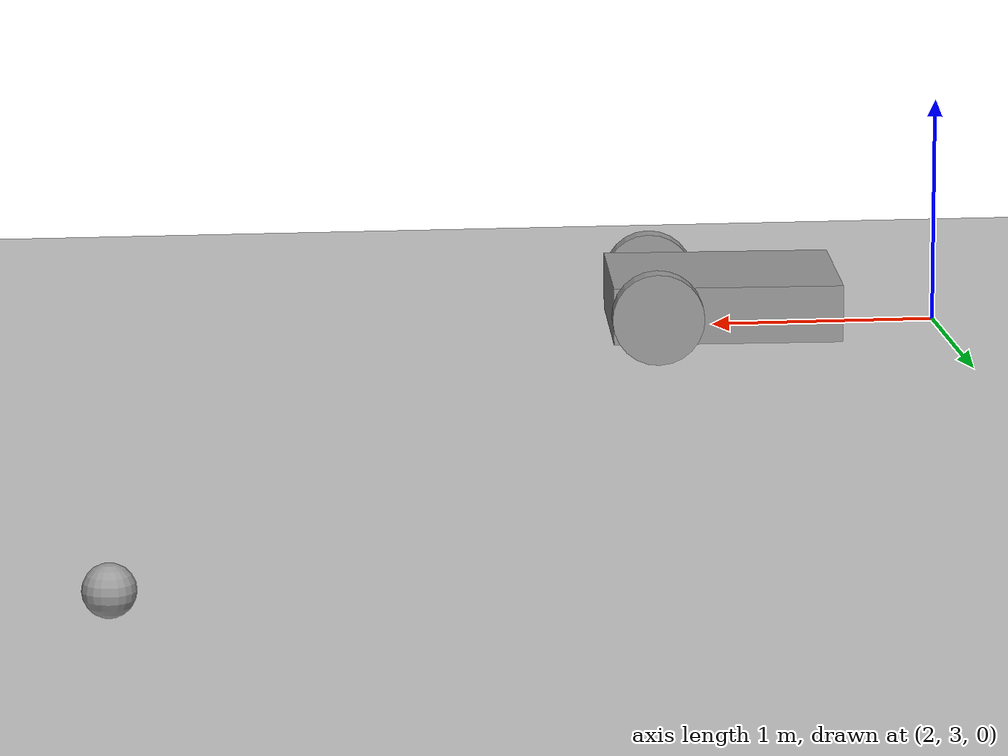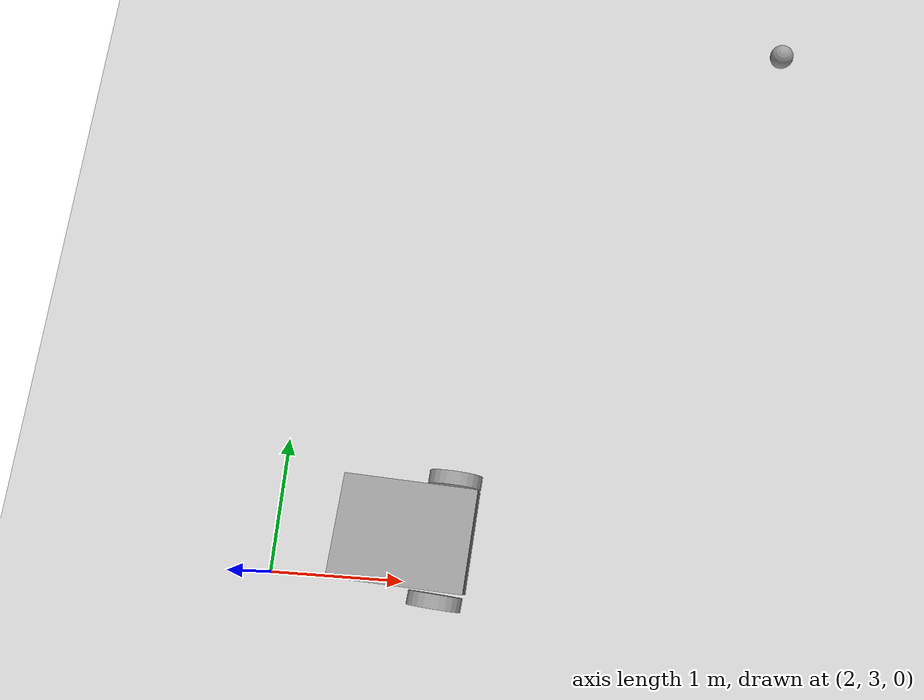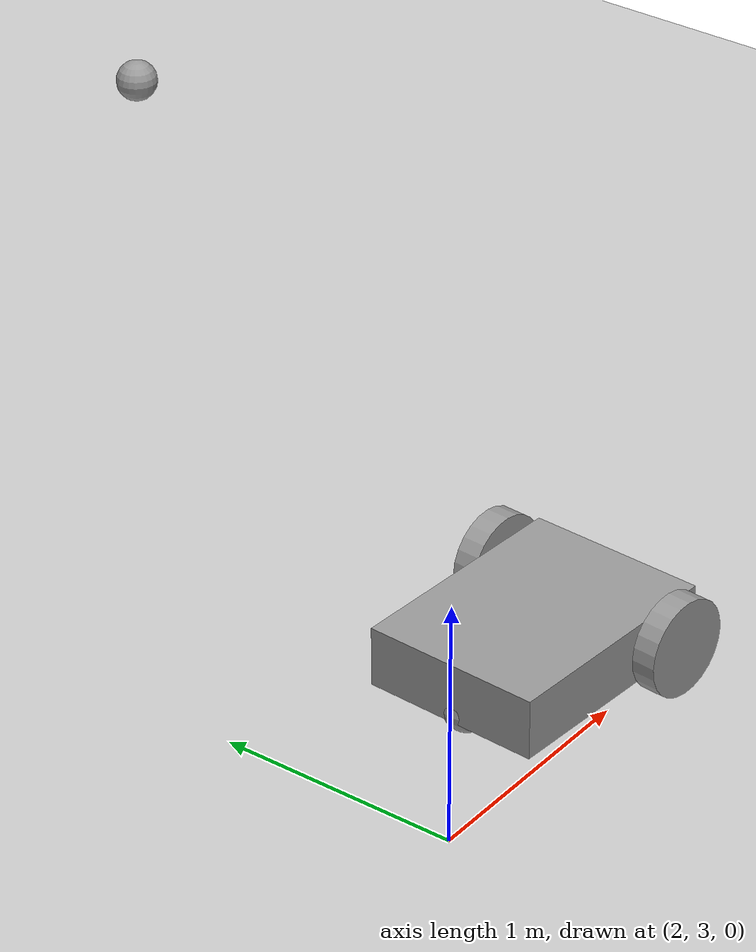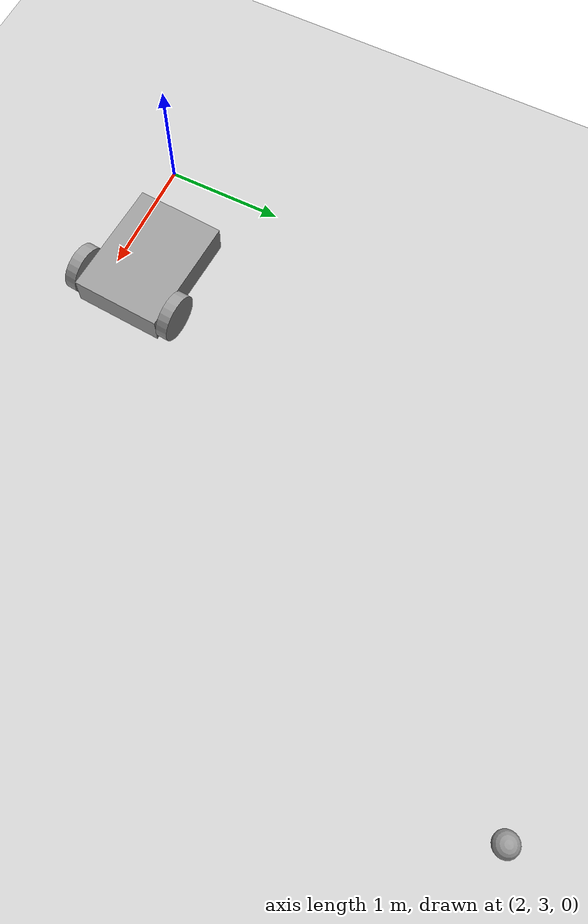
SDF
<sdf version="1.6">
 <world name="default">
  <model name="ground_plane">
   <static>1</static>
   <link name="link">
    <collision name="collision">
     <geometry><plane><normal>0 0 1</normal><size>100 100</size></plane></geometry>
     <surface>
      <contact><collide_bitmask>65535</collide_bitmask></contact>
      <friction><ode><mu>100</mu><mu2>50</mu2></ode></friction>
     </surface>
    </collision>
    <visual name="visual">
     <cast_shadows>0</cast_shadows>
     <geometry><plane><normal>0 0 1</normal><size>100 100</size></plane></geometry>
     <material>
      <script><uri>file://media/materials/scripts/gazebo.material</uri><name>Gazebo/Grey</name></script>
     </material>
    </visual>
   </link>
  </model>
  <model name="three_wheel_robot">
   <link name="link_2">
    <pose>-0.049314 0.004724 0.023129 0 -0 0.021569</pose>
    <inertial>
     <mass>1</mass>
     <inertia>
      <ixx>0.166667</ixx>
      <ixy>0</ixy>
      <ixz>0</ixz>
      <iyy>0.166667</iyy>
      <iyz>0</iyz>
      <izz>0.166667</izz>
     </inertia>
    </inertial>
    <visual name="visual">
     <geometry><box><size>1 0.75 0.25</size></box></geometry>
     <material>
      <lighting>1</lighting>
      <script><uri>file://media/materials/scripts/gazebo.material</uri><name>Gazebo/Grey</name></script>
      <shader type="pixel"><normal_map>__default__</normal_map></shader>
      <ambient>0.3 0.3 0.3 1</ambient>
      <diffuse>0.7 0.7 0.7 1</diffuse>
      <specular>0.01 0.01 0.01 1</specular>
      <emissive>0 0 0 1</emissive>
     </material>
    </visual>
    <collision name="collision">
     <geometry><box><size>1 0.75 0.25</size></box></geometry>
     <surface>
      <friction>
       <ode><mu>1</mu><mu2>1</mu2><fdir1>0 0 0</fdir1><slip1>0</slip1><slip2>0</slip2></ode>
       <torsional>
        <coefficient>1</coefficient>
        <patch_radius>0</patch_radius>
        <surface_radius>0</surface_radius>
        <use_patch_radius>1</use_patch_radius>
        <ode><slip>0</slip></ode>
       </torsional>
      </friction>
      <bounce><restitution_coefficient>0</restitution_coefficient><threshold>1e+06</threshold></bounce>
      <contact>
       <collide_without_contact>0</collide_without_contact>
       <collide_without_contact_bitmask>1</collide_without_contact_bitmask>
       <collide_bitmask>1</collide_bitmask>
       <ode>
        <soft_cfm>0</soft_cfm>
        <soft_erp>0.2</soft_erp>
        <kp>1e+13</kp>
        <kd>1</kd>
        <max_vel>0.01</max_vel>
        <min_depth>0</min_depth>
       </ode>
       <bullet>
        <split_impulse>1</split_impulse>
        <split_impulse_penetration_threshold>-0.01</split_impulse_penetration_threshold>
        <soft_cfm>0</soft_cfm>
        <soft_erp>0.2</soft_erp>
        <kp>1e+13</kp>
        <kd>1</kd>
       </bullet>
      </contact>
     </surface>
    </collision>
   </link>
   <link name="link_3">
    <pose>0.253169 0.443595 0.030612 1.55489 1.54692 3.14159</pose>
    <inertial>
     <mass>1</mass>
     <inertia><ixx>0.145833</ixx><ixy>0</ixy><ixz>0</ixz><iyy>0.145833</iyy><iyz>0</iyz><izz>0.125</izz></inertia>
    </inertial>
    <visual name="visual">
     <geometry><cylinder><radius>0.2</radius><length>0.1</length></cylinder></geometry>
     <material>
      <lighting>1</lighting>
      <script><uri>file://media/materials/scripts/gazebo.material</uri><name>Gazebo/Grey</name></script>
      <shader type="pixel"><normal_map>__default__</normal_map></shader>
      <ambient>0.3 0.3 0.3 1</ambient>
      <diffuse>0.7 0.7 0.7 1</diffuse>
      <specular>0.01 0.01 0.01 1</specular>
      <emissive>0 0 0 1</emissive>
     </material>
    </visual>
    <collision name="collision">
     <geometry><cylinder><radius>0.2</radius><length>0.1</length></cylinder></geometry>
     <surface>
      <friction>
       <ode><mu>1</mu><mu2>1</mu2><fdir1>0 0 0</fdir1><slip1>0</slip1><slip2>0</slip2></ode>
       <torsional>
        <coefficient>1</coefficient>
        <patch_radius>0</patch_radius>
        <surface_radius>0</surface_radius>
        <use_patch_radius>1</use_patch_radius>
        <ode><slip>0</slip></ode>
       </torsional>
      </friction>
      <bounce><restitution_coefficient>0</restitution_coefficient><threshold>1e+06</threshold></bounce>
      <contact>
       <collide_without_contact>0</collide_without_contact>
       <collide_without_contact_bitmask>1</collide_without_contact_bitmask>
       <collide_bitmask>1</collide_bitmask>
       <ode>
        <soft_cfm>0</soft_cfm>
        <soft_erp>0.2</soft_erp>
        <kp>1e+13</kp>
        <kd>1</kd>
        <max_vel>0.01</max_vel>
        <min_depth>0</min_depth>
       </ode>
       <bullet>
        <split_impulse>1</split_impulse>
        <split_impulse_penetration_threshold>-0.01</split_impulse_penetration_threshold>
        <soft_cfm>0</soft_cfm>
        <soft_erp>0.2</soft_erp>
        <kp>1e+13</kp>
        <kd>1</kd>
       </bullet>
      </contact>
     </surface>
    </collision>
   </link>
   <link name="link_3_clone">
    <pose>0.253432 -0.433043 0.023129 1.58116 1.54692 3.14159</pose>
    <inertial>
     <mass>1</mass>
     <inertia><ixx>0.145833</ixx><ixy>0</ixy><ixz>0</ixz><iyy>0.145833</iyy><iyz>0</iyz><izz>0.125</izz></inertia>
    </inertial>
    <visual name="visual">
     <geometry><cylinder><radius>0.2</radius><length>0.1</length></cylinder></geometry>
     <material>
      <lighting>1</lighting>
      <script><uri>file://media/materials/scripts/gazebo.material</uri><name>Gazebo/Grey</name></script>
      <shader type="pixel"><normal_map>__default__</normal_map></shader>
      <ambient>0.3 0.3 0.3 1</ambient>
      <diffuse>0.7 0.7 0.7 1</diffuse>
      <specular>0.01 0.01 0.01 1</specular>
      <emissive>0 0 0 1</emissive>
     </material>
    </visual>
    <collision name="collision">
     <geometry><cylinder><radius>0.2</radius><length>0.1</length></cylinder></geometry>
     <surface>
      <friction>
       <ode><mu>1</mu><mu2>1</mu2><fdir1>0 0 0</fdir1><slip1>0</slip1><slip2>0</slip2></ode>
       <torsional>
        <coefficient>1</coefficient>
        <patch_radius>0</patch_radius>
        <surface_radius>0</surface_radius>
        <use_patch_radius>1</use_patch_radius>
        <ode><slip>0</slip></ode>
       </torsional>
      </friction>
      <bounce><restitution_coefficient>0</restitution_coefficient><threshold>1e+06</threshold></bounce>
      <contact>
       <collide_without_contact>0</collide_without_contact>
       <collide_without_contact_bitmask>1</collide_without_contact_bitmask>
       <collide_bitmask>1</collide_bitmask>
       <ode>
        <soft_cfm>0</soft_cfm>
        <soft_erp>0.2</soft_erp>
        <kp>1e+13</kp>
        <kd>1</kd>
        <max_vel>0.01</max_vel>
        <min_depth>0</min_depth>
       </ode>
       <bullet>
        <split_impulse>1</split_impulse>
        <split_impulse_penetration_threshold>-0.01</split_impulse_penetration_threshold>
        <soft_cfm>0</soft_cfm>
        <soft_erp>0.2</soft_erp>
        <kp>1e+13</kp>
        <kd>1</kd>
       </bullet>
      </contact>
     </surface>
    </collision>
   </link>
   <link name="link_4">
    <pose>-0.457286 -0.015276 -0.076871 0 -0 0</pose>
    <inertial>
     <mass>1</mass>
     <inertia><ixx>0.1</ixx><ixy>0</ixy><ixz>0</ixz><iyy>0.1</iyy><iyz>0</iyz><izz>0.1</izz></inertia>
    </inertial>
    <visual name="visual">
     <geometry><sphere><radius>0.1</radius></sphere></geometry>
     <material>
      <lighting>1</lighting>
      <script><uri>file://media/materials/scripts/gazebo.material</uri><name>Gazebo/Grey</name></script>
      <shader type="pixel"><normal_map>__default__</normal_map></shader>
      <ambient>0.3 0.3 0.3 1</ambient>
      <diffuse>0.7 0.7 0.7 1</diffuse>
      <specular>0.01 0.01 0.01 1</specular>
      <emissive>0 0 0 1</emissive>
     </material>
    </visual>
    <collision name="collision">
     <geometry><sphere><radius>0.1</radius></sphere></geometry>
     <surface>
      <friction>
       <ode><mu>1</mu><mu2>1</mu2><fdir1>0 0 0</fdir1><slip1>0</slip1><slip2>0</slip2></ode>
       <torsional>
        <coefficient>1</coefficient>
        <patch_radius>0</patch_radius>
        <surface_radius>0</surface_radius>
        <use_patch_radius>1</use_patch_radius>
        <ode><slip>0</slip></ode>
       </torsional>
      </friction>
      <bounce><restitution_coefficient>0</restitution_coefficient><threshold>1e+06</threshold></bounce>
      <contact>
       <collide_without_contact>0</collide_without_contact>
       <collide_without_contact_bitmask>1</collide_without_contact_bitmask>
       <collide_bitmask>1</collide_bitmask>
       <ode>
        <soft_cfm>0</soft_cfm>
        <soft_erp>0.2</soft_erp>
        <kp>1e+13</kp>
        <kd>1</kd>
        <max_vel>0.01</max_vel>
        <min_depth>0</min_depth>
       </ode>
       <bullet>
        <split_impulse>1</split_impulse>
        <split_impulse_penetration_threshold>-0.01</split_impulse_penetration_threshold>
        <soft_cfm>0</soft_cfm>
        <soft_erp>0.2</soft_erp>
        <kp>1e+13</kp>
        <kd>1</kd>
       </bullet>
      </contact>
     </surface>
    </collision>
   </link>
   <joint name="link_2_JOINT_0" type="revolute">
    <parent>link_2</parent>
    <child>link_3</child>
    <axis>
     <xyz>0 0 1</xyz>
     <use_parent_model_frame>0</use_parent_model_frame>
     <limit>
      <lower>-1.79769e+308</lower>
      <upper>1.79769e+308</upper>
      <effort>-1</effort>
      <velocity>-1</velocity>
     </limit>
     <dynamics>
      <spring_reference>0</spring_reference>
      <spring_stiffness>0</spring_stiffness>
      <damping>0</damping>
     </dynamics>
    </axis>
    <physics>
     <ode><limit><cfm>0</cfm><erp>0.2</erp></limit><suspension><cfm>0</cfm><erp>0.2</erp></suspension></ode>
    </physics>
   </joint>
   <joint name="link_2_JOINT_1" type="revolute">
    <parent>link_2</parent>
    <child>link_3_clone</child>
    <axis>
     <xyz>0 0 1</xyz>
     <use_parent_model_frame>0</use_parent_model_frame>
     <limit>
      <lower>-1.79769e+308</lower>
      <upper>1.79769e+308</upper>
      <effort>-1</effort>
      <velocity>-1</velocity>
     </limit>
     <dynamics>
      <spring_reference>0</spring_reference>
      <spring_stiffness>0</spring_stiffness>
      <damping>0</damping>
     </dynamics>
    </axis>
    <physics>
     <ode><limit><cfm>0</cfm><erp>0.2</erp></limit><suspension><cfm>0</cfm><erp>0.2</erp></suspension></ode>
    </physics>
   </joint>
   <joint name="link_2_JOINT_2" type="revolute">
    <parent>link_2</parent>
    <child>link_4</child>
    <axis>
     <xyz>0 1 0</xyz>
     <use_parent_model_frame>0</use_parent_model_frame>
     <limit>
      <lower>-1.79769e+308</lower>
      <upper>1.79769e+308</upper>
      <effort>-1</effort>
      <velocity>-1</velocity>
     </limit>
     <dynamics>
      <spring_reference>0</spring_reference>
      <spring_stiffness>0</spring_stiffness>
      <damping>0</damping>
     </dynamics>
    </axis>
    <physics>
     <ode><limit><cfm>0</cfm><erp>0.2</erp></limit><suspension><cfm>0</cfm><erp>0.2</erp></suspension></ode>
    </physics>
   </joint>
   <static>0</static>
   <pose>3.05532 3.3324 0.174715 -0.008575 0.004421 -0.079904</pose>
  </model>
  <model name="my_ball">
   <link name="link_0">
    <inertial>
     <mass>1</mass>
     <inertia><ixx>0.1</ixx><ixy>0</ixy><ixz>0</ixz><iyy>0.1</iyy><iyz>0</iyz><izz>0.1</izz></inertia>
    </inertial>
    <visual name="visual">
     <geometry><sphere><radius>0.1</radius></sphere></geometry>
     <material>
      <lighting>1</lighting>
      <script><uri>file://media/materials/scripts/gazebo.material</uri><name>Gazebo/Grey</name></script>
      <shader type="pixel"><normal_map>__default__</normal_map></shader>
      <ambient>1 1 1 1</ambient>
      <diffuse>1 1 1 1</diffuse>
      <specular>1 1 1 1</specular>
      <emissive>1 1 1 1</emissive>
     </material>
    </visual>
    <collision name="collision">
     <geometry><sphere><radius>0.1</radius></sphere></geometry>
     <surface>
      <friction>
       <ode><mu>1</mu><mu2>1</mu2><fdir1>0 0 0</fdir1><slip1>0</slip1><slip2>0</slip2></ode>
       <torsional>
        <coefficient>1</coefficient>
        <patch_radius>0</patch_radius>
        <surface_radius>0</surface_radius>
        <use_patch_radius>1</use_patch_radius>
        <ode><slip>0</slip></ode>
       </torsional>
      </friction>
      <bounce><restitution_coefficient>0</restitution_coefficient><threshold>1e+06</threshold></bounce>
      <contact>
       <collide_without_contact>0</collide_without_contact>
       <collide_without_contact_bitmask>1</collide_without_contact_bitmask>
       <collide_bitmask>1</collide_bitmask>
       <ode>
        <soft_cfm>0</soft_cfm>
        <soft_erp>0.2</soft_erp>
        <kp>1e+13</kp>
        <kd>1</kd>
        <max_vel>0.01</max_vel>
        <min_depth>0</min_depth>
       </ode>
       <bullet>
        <split_impulse>1</split_impulse>
        <split_impulse_penetration_threshold>-0.01</split_impulse_penetration_threshold>
        <soft_cfm>0</soft_cfm>
        <soft_erp>0.2</soft_erp>
        <kp>1e+13</kp>
        <kd>1</kd>
       </bullet>
      </contact>
     </surface>
    </collision>
   </link>
   <static>0</static>
   <pose>5.8102 7.60076 0.1 0 -0 0</pose>
  </model>
 </world>
</sdf>
